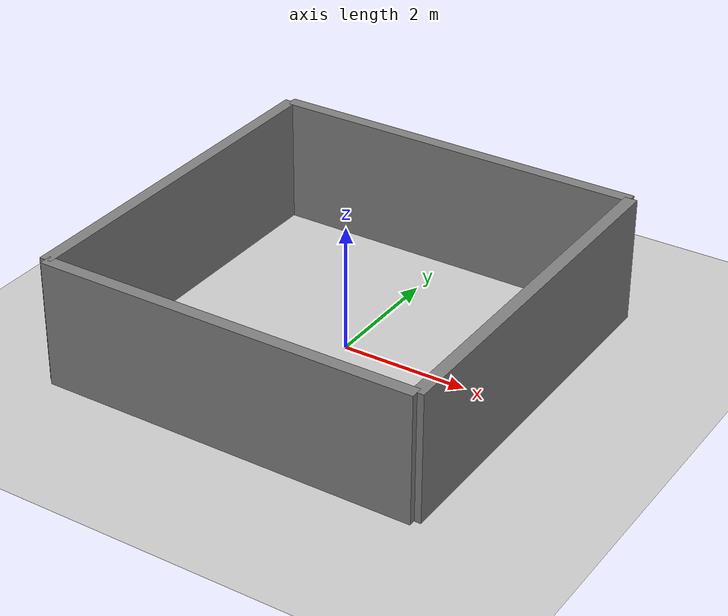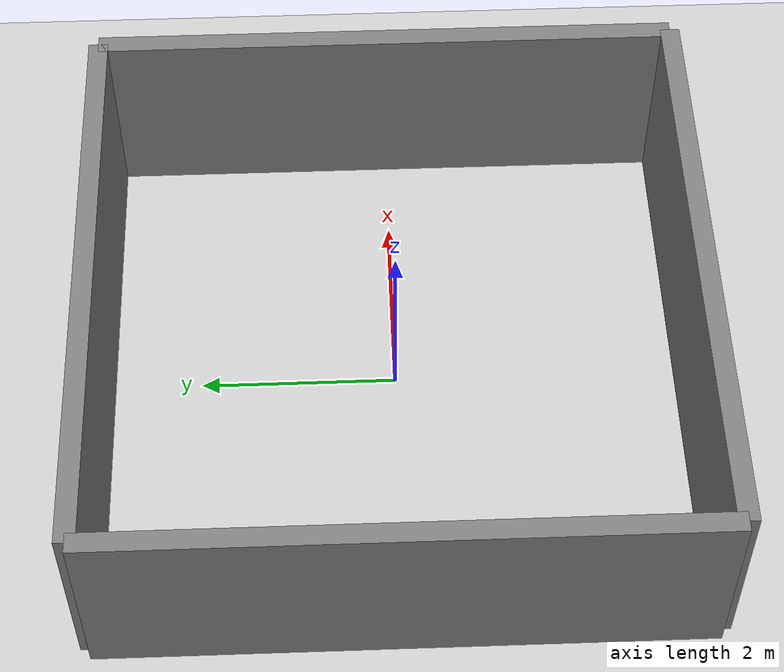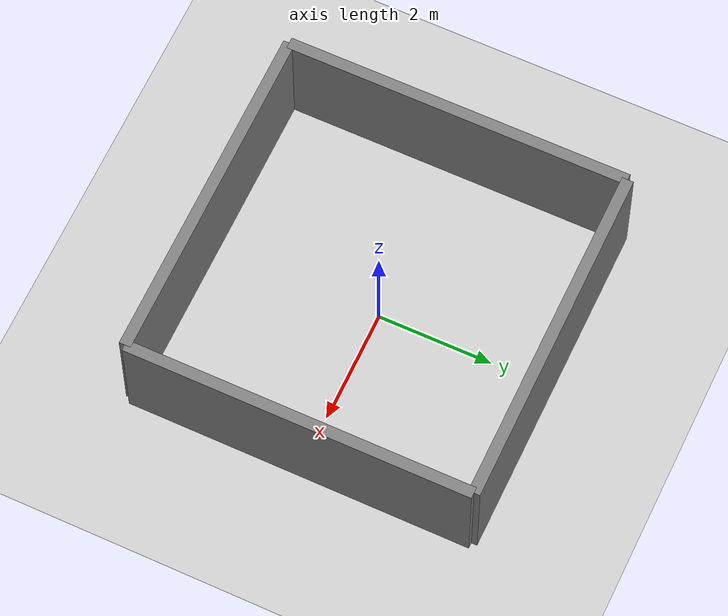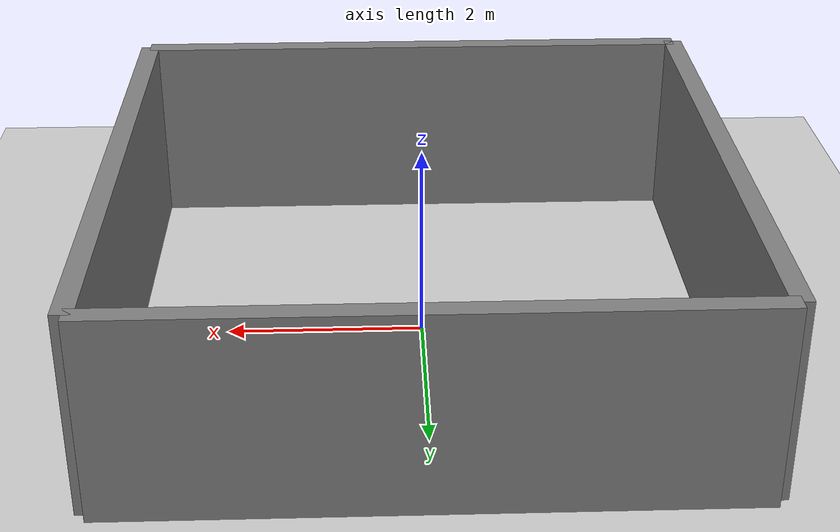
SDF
<?xml version="1.0" ?>
<sdf version="1.9">
  <world name="mundo_paredes">
    <physics name="1ms" type="ignored">
      <max_step_size>0.001</max_step_size>
      <real_time_factor>1.0</real_time_factor>
    </physics>
    <plugin filename="gz-sim-physics-system" name="gz::sim::systems::Physics"/>
    <plugin filename="gz-sim-user-commands-system" name="gz::sim::systems::UserCommands"/>
    <plugin filename="gz-sim-scene-broadcaster-system" name="gz::sim::systems::SceneBroadcaster"/>

    <light type="directional" name="sun">
      <cast_shadows>true</cast_shadows>
      <pose>0 0 10 0 0 0</pose>
      <diffuse>0.8 0.8 0.8 1</diffuse>
      <specular>0.2 0.2 0.2 1</specular>
      <direction>-0.5 0.1 -0.9</direction>
    </light>

    <model name="ground_plane">
      <static>true</static>
      <link name="link">
        <collision name="collision">
          <geometry>
            <plane>
              <normal>0 0 1</normal>
              <size>100 100</size>
            </plane>
          </geometry>
        </collision>
        <visual name="visual">
          <geometry>
            <plane>
              <normal>0 0 1</normal>
              <size>100 100</size>
            </plane>
          </geometry>
          <material>
            <ambient>0.8 0.8 0.8 1</ambient>
            <diffuse>0.8 0.8 0.8 1</diffuse>
            <specular>0.8 0.8 0.8 1</specular>
          </material>
        </visual>
      </link>
    </model>

    <!-- Pared Norte -->
    <model name="pared_norte">
      <static>true</static>
      <pose>0 3 1 0 0 0</pose>
      <link name="link">
        <collision name="col">
          <geometry><box><size>6 0.2 2</size></box></geometry>
        </collision>
        <visual name="vis">
          <geometry><box><size>6 0.2 2</size></box></geometry>
          <material><ambient>0.5 0.5 0.5 1</ambient><diffuse>0.5 0.5 0.5 1</diffuse></material>
        </visual>
      </link>
    </model>

    <!-- Pared Sur -->
    <model name="pared_sur">
      <static>true</static>
      <pose>0 -3 1 0 0 0</pose>
      <link name="link">
        <collision name="col">
          <geometry><box><size>6 0.2 2</size></box></geometry>
        </collision>
        <visual name="vis">
          <geometry><box><size>6 0.2 2</size></box></geometry>
          <material><ambient>0.5 0.5 0.5 1</ambient><diffuse>0.5 0.5 0.5 1</diffuse></material>
        </visual>
      </link>
    </model>

    <!-- Pared Este -->
    <model name="pared_este">
      <static>true</static>
      <pose>3 0 1 0 0 1.5708</pose>
      <link name="link">
        <collision name="col">
          <geometry><box><size>6 0.2 2</size></box></geometry>
        </collision>
        <visual name="vis">
          <geometry><box><size>6 0.2 2</size></box></geometry>
          <material><ambient>0.5 0.5 0.5 1</ambient><diffuse>0.5 0.5 0.5 1</diffuse></material>
        </visual>
      </link>
    </model>

    <!-- Pared Oeste -->
    <model name="pared_oeste">
      <static>true</static>
      <pose>-3 0 1 0 0 1.5708</pose>
      <link name="link">
        <collision name="col">
          <geometry><box><size>6 0.2 2</size></box></geometry>
        </collision>
        <visual name="vis">
          <geometry><box><size>6 0.2 2</size></box></geometry>
          <material><ambient>0.5 0.5 0.5 1</ambient><diffuse>0.5 0.5 0.5 1</diffuse></material>
        </visual>
      </link>
    </model>

  </world>
</sdf>
